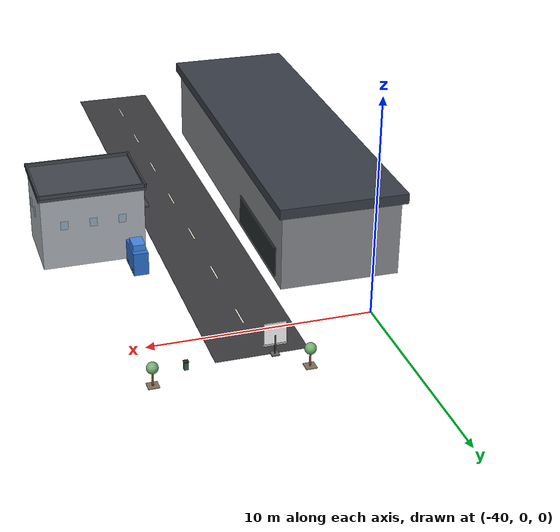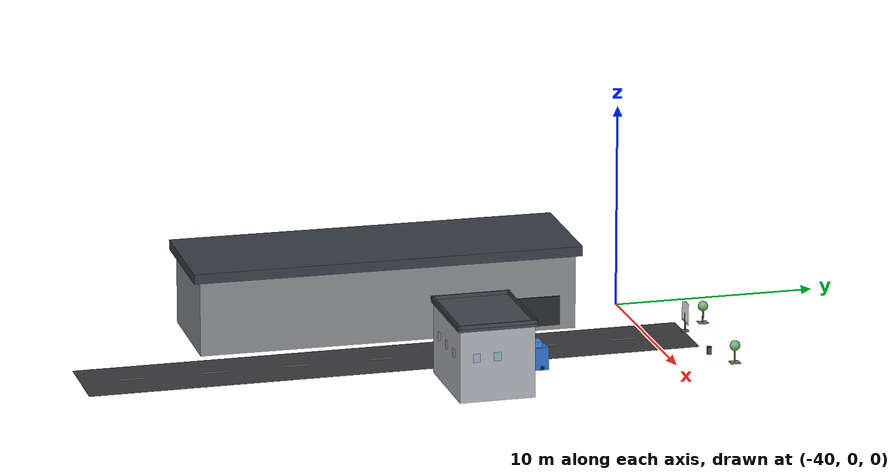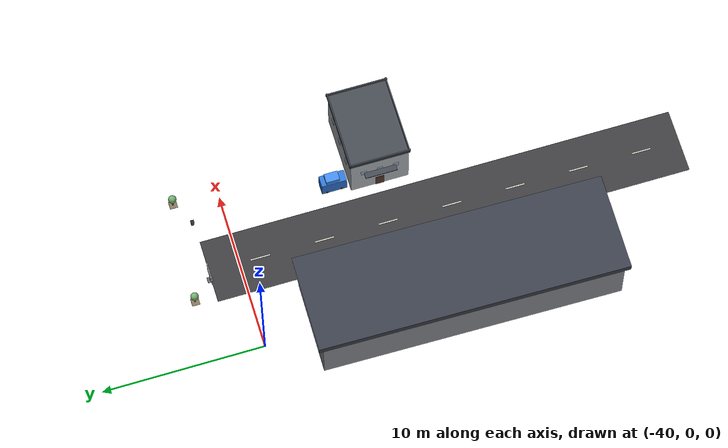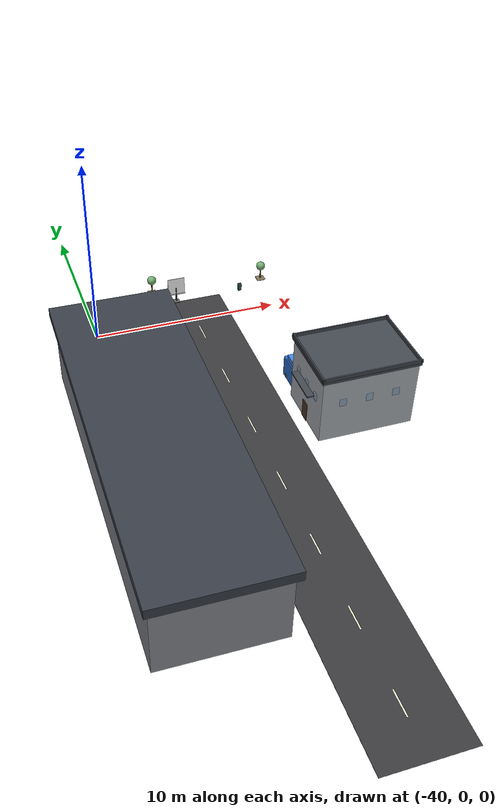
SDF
<sdf version="1.10">
 <world name="city">
  <model name="road_west_connector">
   <static>true</static>
   <pose>-34.4545196533203 -12.8991256713867 0 0 0 1.57080003571763</pose>
   <link name="link">
    <collision name="road_col">
     <pose>0 0 0.004 0 0 0</pose>
     <geometry><box><size>29.6 4 0.008</size></box></geometry>
    </collision>
    <visual name="road_vis">
     <pose>0 0 0.004 0 0 0</pose>
     <geometry><box><size>29.6 4 0.008</size></box></geometry>
     <material>
      <ambient>0.230000004 0.230000004 0.239999995 1</ambient>
      <diffuse>0.230000004 0.230000004 0.239999995 1</diffuse>
      <specular>0.0799999982 0.0799999982 0.0799999982 1</specular>
     </material>
    </visual>
    <visual name="dash0_vis">
     <pose>-12.4 0 0.0088 0 0 0</pose>
     <geometry><box><size>1.2 0.072 0.004</size></box></geometry>
     <material>
      <ambient>0.959999979 0.939999998 0.829999983 1</ambient>
      <diffuse>0.959999979 0.939999998 0.829999983 1</diffuse>
      <specular>0.0799999982 0.0799999982 0.0799999982 1</specular>
     </material>
    </visual>
    <visual name="dash1_vis">
     <pose>-8.4 0 0.0088 0 0 0</pose>
     <geometry><box><size>1.2 0.072 0.004</size></box></geometry>
     <material>
      <ambient>0.959999979 0.939999998 0.829999983 1</ambient>
      <diffuse>0.959999979 0.939999998 0.829999983 1</diffuse>
      <specular>0.0799999982 0.0799999982 0.0799999982 1</specular>
     </material>
    </visual>
    <visual name="dash2_vis">
     <pose>-4.4 0 0.0088 0 0 0</pose>
     <geometry><box><size>1.2 0.072 0.004</size></box></geometry>
     <material>
      <ambient>0.959999979 0.939999998 0.829999983 1</ambient>
      <diffuse>0.959999979 0.939999998 0.829999983 1</diffuse>
      <specular>0.0799999982 0.0799999982 0.0799999982 1</specular>
     </material>
    </visual>
    <visual name="dash3_vis">
     <pose>-0.4 0 0.0088 0 0 0</pose>
     <geometry><box><size>1.2 0.072 0.004</size></box></geometry>
     <material>
      <ambient>0.959999979 0.939999998 0.829999983 1</ambient>
      <diffuse>0.959999979 0.939999998 0.829999983 1</diffuse>
      <specular>0.0799999982 0.0799999982 0.0799999982 1</specular>
     </material>
    </visual>
    <visual name="dash4_vis">
     <pose>3.6 0 0.0088 0 0 0</pose>
     <geometry><box><size>1.2 0.072 0.004</size></box></geometry>
     <material>
      <ambient>0.959999979 0.939999998 0.829999983 1</ambient>
      <diffuse>0.959999979 0.939999998 0.829999983 1</diffuse>
      <specular>0.0799999982 0.0799999982 0.0799999982 1</specular>
     </material>
    </visual>
    <visual name="dash5_vis">
     <pose>7.6 0 0.0088 0 0 0</pose>
     <geometry><box><size>1.2 0.072 0.004</size></box></geometry>
     <material>
      <ambient>0.959999979 0.939999998 0.829999983 1</ambient>
      <diffuse>0.959999979 0.939999998 0.829999983 1</diffuse>
      <specular>0.0799999982 0.0799999982 0.0799999982 1</specular>
     </material>
    </visual>
    <visual name="dash6_vis">
     <pose>11.6 0 0.0088 0 0 0</pose>
     <geometry><box><size>1.2 0.072 0.004</size></box></geometry>
     <material>
      <ambient>0.959999979 0.939999998 0.829999983 1</ambient>
      <diffuse>0.959999979 0.939999998 0.829999983 1</diffuse>
      <specular>0.0799999982 0.0799999982 0.0799999982 1</specular>
     </material>
    </visual>
    <inertial>
     <mass>1</mass>
     <inertia><ixx>1</ixx><ixy>0</ixy><ixz>0</ixz><iyy>1</iyy><iyz>0</iyz><izz>1</izz></inertia>
    </inertial>
   </link>
  </model>
  <model name="tree_24">
   <static>true</static>
   <pose>-29.6474792480469 2.78198394775391 0 0 0 0</pose>
   <link name="link">
    <collision name="soil_col">
     <pose>0 0 0.012 0 0 0</pose>
     <geometry><box><size>0.48 0.48 0.024</size></box></geometry>
    </collision>
    <visual name="soil_vis">
     <pose>0 0 0.012 0 0 0</pose>
     <geometry><box><size>0.48 0.48 0.024</size></box></geometry>
     <material>
      <ambient>0.5 0.439999998 0.349999994 1</ambient>
      <diffuse>0.5 0.439999998 0.349999994 1</diffuse>
      <specular>0.0799999982 0.0799999982 0.0799999982 1</specular>
     </material>
    </visual>
    <collision name="trunk_col">
     <pose>0 0 0.36 0 0 0</pose>
     <geometry><cylinder><radius>0.04</radius><length>0.72</length></cylinder></geometry>
    </collision>
    <visual name="trunk_vis">
     <pose>0 0 0.36 0 0 0</pose>
     <geometry><cylinder><radius>0.04</radius><length>0.72</length></cylinder></geometry>
     <material>
      <ambient>0.449999988 0.310000002 0.180000007 1</ambient>
      <diffuse>0.449999988 0.310000002 0.180000007 1</diffuse>
      <specular>0.0799999982 0.0799999982 0.0799999982 1</specular>
     </material>
    </visual>
    <visual name="crown_vis">
     <pose>0 0 0.84 0 0 0</pose>
     <geometry><sphere><radius>0.248</radius></sphere></geometry>
     <material>
      <ambient>0.449999988 0.680000007 0.439999998 1</ambient>
      <diffuse>0.449999988 0.680000007 0.439999998 1</diffuse>
      <specular>0.0799999982 0.0799999982 0.0799999982 1</specular>
     </material>
    </visual>
    <inertial>
     <mass>1</mass>
     <inertia><ixx>1</ixx><ixy>0</ixy><ixz>0</ixz><iyy>1</iyy><iyz>0</iyz><izz>1</izz></inertia>
    </inertial>
   </link>
  </model>
  <model name="tree_25">
   <static>true</static>
   <pose>-36.0678924560547 3.2 0 0 0 0</pose>
   <link name="link">
    <collision name="soil_col">
     <pose>0 0 0.012 0 0 0</pose>
     <geometry><box><size>0.48 0.48 0.024</size></box></geometry>
    </collision>
    <visual name="soil_vis">
     <pose>0 0 0.012 0 0 0</pose>
     <geometry><box><size>0.48 0.48 0.024</size></box></geometry>
     <material>
      <ambient>0.5 0.439999998 0.349999994 1</ambient>
      <diffuse>0.5 0.439999998 0.349999994 1</diffuse>
      <specular>0.0799999982 0.0799999982 0.0799999982 1</specular>
     </material>
    </visual>
    <collision name="trunk_col">
     <pose>0 0 0.36 0 0 0</pose>
     <geometry><cylinder><radius>0.04</radius><length>0.72</length></cylinder></geometry>
    </collision>
    <visual name="trunk_vis">
     <pose>0 0 0.36 0 0 0</pose>
     <geometry><cylinder><radius>0.04</radius><length>0.72</length></cylinder></geometry>
     <material>
      <ambient>0.449999988 0.310000002 0.180000007 1</ambient>
      <diffuse>0.449999988 0.310000002 0.180000007 1</diffuse>
      <specular>0.0799999982 0.0799999982 0.0799999982 1</specular>
     </material>
    </visual>
    <visual name="crown_vis">
     <pose>0 0 0.84 0 0 0</pose>
     <geometry><sphere><radius>0.248</radius></sphere></geometry>
     <material>
      <ambient>0.449999988 0.680000007 0.439999998 1</ambient>
      <diffuse>0.449999988 0.680000007 0.439999998 1</diffuse>
      <specular>0.0799999982 0.0799999982 0.0799999982 1</specular>
     </material>
    </visual>
    <inertial>
     <mass>1</mass>
     <inertia><ixx>1</ixx><ixy>0</ixy><ixz>0</ixz><iyy>1</iyy><iyz>0</iyz><izz>1</izz></inertia>
    </inertial>
   </link>
  </model>
  <model name="bin_0">
   <static>true</static>
   <pose>-31.2 2 0 0 0 0</pose>
   <link name="link">
    <visual name="body">
     <pose>0 0 0.18 0 0 0</pose>
     <geometry><box><size>0.18 0.18 0.36</size></box></geometry>
     <material>
      <ambient>0.180000007 0.379999995 0.219999999 1</ambient>
      <diffuse>0.180000007 0.379999995 0.219999999 1</diffuse>
      <specular>0.0799999982 0.0799999982 0.0799999982 1</specular>
     </material>
    </visual>
    <visual name="lid">
     <pose>0 0 0.368 0 0 0</pose>
     <geometry><box><size>0.208 0.208 0.032</size></box></geometry>
     <material>
      <ambient>0.150000006 0.150000006 0.150000006 1</ambient>
      <diffuse>0.150000006 0.150000006 0.150000006 1</diffuse>
      <specular>0.0799999982 0.0799999982 0.0799999982 1</specular>
     </material>
    </visual>
    <inertial>
     <mass>1</mass>
     <inertia><ixx>1</ixx><ixy>0</ixy><ixz>0</ixz><iyy>1</iyy><iyz>0</iyz><izz>1</izz></inertia>
    </inertial>
   </link>
  </model>
  <model name="restaurant_qr_sign">
   <static>true</static>
   <pose>-34.9796813964844 1.96698799133301 0 0 0 -1.56862787106349</pose>
   <link name="link">
    <collision name="post_col">
     <pose>0 0 0.46 0 0 0</pose>
     <geometry><box><size>0.056 0.056 0.92</size></box></geometry>
    </collision>
    <visual name="post_vis">
     <pose>0 0 0.46 0 0 0</pose>
     <geometry><box><size>0.056 0.056 0.92</size></box></geometry>
     <material>
      <ambient>0.239999995 0.239999995 0.239999995 1</ambient>
      <diffuse>0.239999995 0.239999995 0.239999995 1</diffuse>
      <specular>0.0799999982 0.0799999982 0.0799999982 1</specular>
     </material>
    </visual>
    <collision name="base_col">
     <pose>0 0 0.024 0 0 0</pose>
     <geometry><box><size>0.34 0.34 0.048</size></box></geometry>
    </collision>
    <visual name="base_vis">
     <pose>0 0 0.024 0 0 0</pose>
     <geometry><box><size>0.34 0.34 0.048</size></box></geometry>
     <material>
      <ambient>0.379999995 0.379999995 0.379999995 1</ambient>
      <diffuse>0.379999995 0.379999995 0.379999995 1</diffuse>
      <specular>0.0799999982 0.0799999982 0.0799999982 1</specular>
     </material>
    </visual>
    <visual name="back_vis">
     <pose>0 0 0.48 0 0 0</pose>
     <geometry><box><size>0.024 1.02 0.06</size></box></geometry>
     <material>
      <ambient>0.920000017 0.920000017 0.920000017 1</ambient>
      <diffuse>0.920000017 0.920000017 0.920000017 1</diffuse>
      <specular>0.0500000007 0.0500000007 0.0500000007 1</specular>
     </material>
    </visual>
    <visual name="qr_vis">
     <pose>0 0 1.02 0 0 0</pose>
     <geometry><box><size>0.04 0.96 0.96</size></box></geometry>
     <material>
      <ambient>1 1 1 1</ambient>
      <diffuse>1 1 1 1</diffuse>
      <specular>0.0500000007 0.0500000007 0.0500000007 1</specular>
      <pbr><metal><metalness>0.0</metalness><roughness>1.0</roughness></metal></pbr>
     </material>
    </visual>
    <inertial>
     <mass>1</mass>
     <inertia><ixx>1</ixx><ixy>0</ixy><ixz>0</ixz><iyy>1</iyy><iyz>0</iyz><izz>1</izz></inertia>
    </inertial>
   </link>
  </model>
  <model name="gallery_long_warehouse_3">
   <static>true</static>
   <pose>-39.8097304594998 -12.1472482567963 0 0 0 -1.58411002434634</pose>
   <link name="body">
    <collision name="collision">
     <pose>0 0 1.8 0 0 0</pose>
     <geometry><box><size>18.4 5.6 3.6</size></box></geometry>
    </collision>
    <visual name="main">
     <pose>0 0 1.8 0 0 0</pose>
     <geometry><box><size>18.4 5.6 3.6</size></box></geometry>
     <material>
      <ambient>0.540000021 0.550000012 0.569999993 1</ambient>
      <diffuse>0.540000021 0.550000012 0.569999993 1</diffuse>
      <specular>0.0500000007 0.0500000007 0.0500000007 1</specular>
     </material>
    </visual>
    <visual name="roof">
     <pose>0 0 3.88 0 0 0</pose>
     <geometry><box><size>19 6 0.48</size></box></geometry>
     <material>
      <ambient>0.219999999 0.239999995 0.280000001 1</ambient>
      <diffuse>0.219999999 0.239999995 0.280000001 1</diffuse>
      <specular>0.0399999991 0.0399999991 0.0399999991 1</specular>
     </material>
    </visual>
    <visual name="loading_bays">
     <pose>-5.6 2.84 0.96 0 0 0</pose>
     <geometry><box><size>5.6 0.08 1.44</size></box></geometry>
     <material>
      <ambient>0.150000006 0.170000002 0.180000007 1</ambient>
      <diffuse>0.150000006 0.170000002 0.180000007 1</diffuse>
      <specular>0.0199999996 0.0199999996 0.0199999996 1</specular>
     </material>
    </visual>
    <inertial>
     <mass>1</mass>
     <inertia><ixx>1</ixx><ixy>0</ixy><ixz>0</ixz><iyy>1</iyy><iyz>0</iyz><izz>1</izz></inertia>
    </inertial>
   </link>
  </model>
  <model name="office_east_2_2_1_1">
   <static>true</static>
   <pose>-29.4421723225907 -9.55060925805542 0 0 0 0</pose>
   <link name="link">
    <collision name="body_col">
     <pose>0 0 1.72 0 0 0</pose>
     <geometry><box><size>4.8 3.6 3.44</size></box></geometry>
    </collision>
    <visual name="body_vis">
     <pose>0 0 1.72 0 0 0</pose>
     <geometry><box><size>4.8 3.6 3.44</size></box></geometry>
     <material>
      <ambient>0.689999998 0.709999979 0.730000019 1</ambient>
      <diffuse>0.689999998 0.709999979 0.730000019 1</diffuse>
      <specular>0.0799999982 0.0799999982 0.0799999982 1</specular>
     </material>
    </visual>
    <collision name="roof_col">
     <pose>0 0 3.51 0 0 0</pose>
     <geometry><box><size>4.96 3.76 0.14</size></box></geometry>
    </collision>
    <visual name="roof_vis">
     <pose>0 0 3.51 0 0 0</pose>
     <geometry><box><size>4.96 3.76 0.14</size></box></geometry>
     <material>
      <ambient>0.25999999 0.280000001 0.310000002 1</ambient>
      <diffuse>0.25999999 0.280000001 0.310000002 1</diffuse>
      <specular>0.0799999982 0.0799999982 0.0799999982 1</specular>
     </material>
    </visual>
    <visual name="p1_vis">
     <pose>0 1.836 3.668 0 0 0</pose>
     <geometry><box><size>5.02 0.072 0.18</size></box></geometry>
     <material>
      <ambient>0.25999999 0.280000001 0.310000002 1</ambient>
      <diffuse>0.25999999 0.280000001 0.310000002 1</diffuse>
      <specular>0.0799999982 0.0799999982 0.0799999982 1</specular>
     </material>
    </visual>
    <visual name="p2_vis">
     <pose>0 -1.836 3.668 0 0 0</pose>
     <geometry><box><size>5.02 0.072 0.18</size></box></geometry>
     <material>
      <ambient>0.25999999 0.280000001 0.310000002 1</ambient>
      <diffuse>0.25999999 0.280000001 0.310000002 1</diffuse>
      <specular>0.0799999982 0.0799999982 0.0799999982 1</specular>
     </material>
    </visual>
    <visual name="p3_vis">
     <pose>2.436 0 3.668 0 0 0</pose>
     <geometry><box><size>0.072 3.82 0.18</size></box></geometry>
     <material>
      <ambient>0.25999999 0.280000001 0.310000002 1</ambient>
      <diffuse>0.25999999 0.280000001 0.310000002 1</diffuse>
      <specular>0.0799999982 0.0799999982 0.0799999982 1</specular>
     </material>
    </visual>
    <visual name="p4_vis">
     <pose>-2.436 0 3.668 0 0 0</pose>
     <geometry><box><size>0.072 3.82 0.18</size></box></geometry>
     <material>
      <ambient>0.25999999 0.280000001 0.310000002 1</ambient>
      <diffuse>0.25999999 0.280000001 0.310000002 1</diffuse>
      <specular>0.0799999982 0.0799999982 0.0799999982 1</specular>
     </material>
    </visual>
    <visual name="door_vis">
     <pose>-2.416 0 0.48 0 0 0</pose>
     <geometry><box><size>0.04 0.52 0.96</size></box></geometry>
     <material>
      <ambient>0.319999993 0.219999999 0.159999996 1</ambient>
      <diffuse>0.319999993 0.219999999 0.159999996 1</diffuse>
      <specular>0.0799999982 0.0799999982 0.0799999982 1</specular>
     </material>
    </visual>
    <visual name="win_west_0">
     <pose>-2.412 -1.008 2.1328 0 0 0</pose>
     <geometry><box><size>0.032 0.34 0.4</size></box></geometry>
     <material>
      <ambient>0.550000012 0.720000029 0.879999995 0.550000012</ambient>
      <diffuse>0.550000012 0.720000029 0.879999995 0.550000012</diffuse>
      <specular>0.0799999982 0.0799999982 0.0799999982 1</specular>
      <transparency>0.35</transparency>
     </material>
    </visual>
    <visual name="win_west_1">
     <pose>-2.412 0 2.1328 0 0 0</pose>
     <geometry><box><size>0.032 0.34 0.4</size></box></geometry>
     <material>
      <ambient>0.550000012 0.720000029 0.879999995 0.550000012</ambient>
      <diffuse>0.550000012 0.720000029 0.879999995 0.550000012</diffuse>
      <specular>0.0799999982 0.0799999982 0.0799999982 1</specular>
      <transparency>0.35</transparency>
     </material>
    </visual>
    <visual name="win_west_2">
     <pose>-2.412 1.008 2.1328 0 0 0</pose>
     <geometry><box><size>0.032 0.34 0.4</size></box></geometry>
     <material>
      <ambient>0.550000012 0.720000029 0.879999995 0.550000012</ambient>
      <diffuse>0.550000012 0.720000029 0.879999995 0.550000012</diffuse>
      <specular>0.0799999982 0.0799999982 0.0799999982 1</specular>
      <transparency>0.35</transparency>
     </material>
    </visual>
    <visual name="win_south_0">
     <pose>-1.344 -1.812 2.1328 0 0 0</pose>
     <geometry><box><size>0.34 0.032 0.4</size></box></geometry>
     <material>
      <ambient>0.550000012 0.720000029 0.879999995 0.550000012</ambient>
      <diffuse>0.550000012 0.720000029 0.879999995 0.550000012</diffuse>
      <specular>0.0799999982 0.0799999982 0.0799999982 1</specular>
      <transparency>0.35</transparency>
     </material>
    </visual>
    <visual name="win_south_1">
     <pose>0 -1.812 2.1328 0 0 0</pose>
     <geometry><box><size>0.34 0.032 0.4</size></box></geometry>
     <material>
      <ambient>0.550000012 0.720000029 0.879999995 0.550000012</ambient>
      <diffuse>0.550000012 0.720000029 0.879999995 0.550000012</diffuse>
      <specular>0.0799999982 0.0799999982 0.0799999982 1</specular>
      <transparency>0.35</transparency>
     </material>
    </visual>
    <visual name="win_south_2">
     <pose>1.344 -1.812 2.1328 0 0 0</pose>
     <geometry><box><size>0.34 0.032 0.4</size></box></geometry>
     <material>
      <ambient>0.550000012 0.720000029 0.879999995 0.550000012</ambient>
      <diffuse>0.550000012 0.720000029 0.879999995 0.550000012</diffuse>
      <specular>0.0799999982 0.0799999982 0.0799999982 1</specular>
      <transparency>0.35</transparency>
     </material>
    </visual>
    <visual name="win_east_0">
     <pose>2.412 -1.008 2.1328 0 0 0</pose>
     <geometry><box><size>0.032 0.34 0.4</size></box></geometry>
     <material>
      <ambient>0.550000012 0.720000029 0.879999995 0.550000012</ambient>
      <diffuse>0.550000012 0.720000029 0.879999995 0.550000012</diffuse>
      <specular>0.0799999982 0.0799999982 0.0799999982 1</specular>
      <transparency>0.35</transparency>
     </material>
    </visual>
    <visual name="win_east_1">
     <pose>2.412 0 2.1328 0 0 0</pose>
     <geometry><box><size>0.032 0.34 0.4</size></box></geometry>
     <material>
      <ambient>0.550000012 0.720000029 0.879999995 0.550000012</ambient>
      <diffuse>0.550000012 0.720000029 0.879999995 0.550000012</diffuse>
      <specular>0.0799999982 0.0799999982 0.0799999982 1</specular>
      <transparency>0.35</transparency>
     </material>
    </visual>
    <visual name="win_north_0">
     <pose>-1.344 1.812 2.1328 0 0 0</pose>
     <geometry><box><size>0.34 0.032 0.4</size></box></geometry>
     <material>
      <ambient>0.550000012 0.720000029 0.879999995 0.550000012</ambient>
      <diffuse>0.550000012 0.720000029 0.879999995 0.550000012</diffuse>
      <specular>0.0799999982 0.0799999982 0.0799999982 1</specular>
      <transparency>0.35</transparency>
     </material>
    </visual>
    <visual name="win_north_1">
     <pose>0 1.812 2.1328 0 0 0</pose>
     <geometry><box><size>0.34 0.032 0.4</size></box></geometry>
     <material>
      <ambient>0.550000012 0.720000029 0.879999995 0.550000012</ambient>
      <diffuse>0.550000012 0.720000029 0.879999995 0.550000012</diffuse>
      <specular>0.0799999982 0.0799999982 0.0799999982 1</specular>
      <transparency>0.35</transparency>
     </material>
    </visual>
    <visual name="win_north_2">
     <pose>1.344 1.812 2.1328 0 0 0</pose>
     <geometry><box><size>0.34 0.032 0.4</size></box></geometry>
     <material>
      <ambient>0.550000012 0.720000029 0.879999995 0.550000012</ambient>
      <diffuse>0.550000012 0.720000029 0.879999995 0.550000012</diffuse>
      <specular>0.0799999982 0.0799999982 0.0799999982 1</specular>
      <transparency>0.35</transparency>
     </material>
    </visual>
    <visual name="awning">
     <pose>-2.62 0 2.1328 0 0 0</pose>
     <geometry><box><size>0.36 1.98 0.064</size></box></geometry>
     <material>
      <ambient>0.25999999 0.280000001 0.310000002 1</ambient>
      <diffuse>0.25999999 0.280000001 0.310000002 1</diffuse>
      <specular>0.0799999982 0.0799999982 0.0799999982 1</specular>
     </material>
    </visual>
    <inertial>
     <mass>1</mass>
     <inertia><ixx>1</ixx><ixy>0</ixy><ixz>0</ixz><iyy>1</iyy><iyz>0</iyz><izz>1</izz></inertia>
    </inertial>
   </link>
  </model>
  <model name="car_9_6_1">
   <static>true</static>
   <pose>-31.2270434828 -6.78632026995 0 0 0 1.57080003572</pose>
   <link name="link">
    <collision name="body_col">
     <pose>0 0 0.55125 0 0 0</pose>
     <geometry><box><size>1.56 0.7 1.1025</size></box></geometry>
    </collision>
    <collision name="cab_col">
     <pose>0.06 0 0.866 0 0 0</pose>
     <geometry><box><size>0.84 0.58 1.0395</size></box></geometry>
    </collision>
    <visual name="body_vis">
     <pose>0 0 0.55125 0 0 0</pose>
     <geometry><box><size>1.56 0.7 1.1025</size></box></geometry>
     <material>
      <ambient>0.180000007 0.449999988 0.819999993 1</ambient>
      <diffuse>0.180000007 0.449999988 0.819999993 1</diffuse>
      <specular>0.0799999982 0.0799999982 0.0799999982 1</specular>
     </material>
    </visual>
    <visual name="cab_vis">
     <pose>0.06 0 0.866 0 0 0</pose>
     <geometry><box><size>0.84 0.58 1.0395</size></box></geometry>
     <material>
      <ambient>0.25999999 0.529999971 0.899999976 1</ambient>
      <diffuse>0.25999999 0.529999971 0.899999976 1</diffuse>
      <specular>0.0799999982 0.0799999982 0.0799999982 1</specular>
     </material>
    </visual>
    <visual name="glass_vis">
     <pose>0.08 0 0.854 0 0 0</pose>
     <geometry><box><size>0.76 0.528 0.8505</size></box></geometry>
     <material>
      <ambient>0.550000012 0.720000029 0.879999995 0.550000012</ambient>
      <diffuse>0.550000012 0.720000029 0.879999995 0.550000012</diffuse>
      <specular>0.0799999982 0.0799999982 0.0799999982 1</specular>
      <transparency>0.35</transparency>
     </material>
    </visual>
    <visual name="wheel_-1.15_-0.82">
     <pose>-0.46 -0.328 0.11 1.5708 0 0</pose>
     <geometry><cylinder><radius>0.112</radius><length>0.072</length></cylinder></geometry>
     <material>
      <ambient>0.0799999982 0.0799999982 0.0799999982 1</ambient>
      <diffuse>0.0799999982 0.0799999982 0.0799999982 1</diffuse>
      <specular>0.0799999982 0.0799999982 0.0799999982 1</specular>
     </material>
    </visual>
    <visual name="wheel_-1.15_0.82">
     <pose>-0.46 0.328 0.11 1.5708 0 0</pose>
     <geometry><cylinder><radius>0.112</radius><length>0.072</length></cylinder></geometry>
     <material>
      <ambient>0.0799999982 0.0799999982 0.0799999982 1</ambient>
      <diffuse>0.0799999982 0.0799999982 0.0799999982 1</diffuse>
      <specular>0.0799999982 0.0799999982 0.0799999982 1</specular>
     </material>
    </visual>
    <visual name="wheel_1.15_-0.82">
     <pose>0.46 -0.328 0.11 1.5708 0 0</pose>
     <geometry><cylinder><radius>0.112</radius><length>0.072</length></cylinder></geometry>
     <material>
      <ambient>0.0799999982 0.0799999982 0.0799999982 1</ambient>
      <diffuse>0.0799999982 0.0799999982 0.0799999982 1</diffuse>
      <specular>0.0799999982 0.0799999982 0.0799999982 1</specular>
     </material>
    </visual>
    <visual name="wheel_1.15_0.82">
     <pose>0.46 0.328 0.11 1.5708 0 0</pose>
     <geometry><cylinder><radius>0.112</radius><length>0.072</length></cylinder></geometry>
     <material>
      <ambient>0.0799999982 0.0799999982 0.0799999982 1</ambient>
      <diffuse>0.0799999982 0.0799999982 0.0799999982 1</diffuse>
      <specular>0.0799999982 0.0799999982 0.0799999982 1</specular>
     </material>
    </visual>
    <inertial>
     <mass>1</mass>
     <inertia><ixx>1</ixx><ixy>0</ixy><ixz>0</ixz><iyy>1</iyy><iyz>0</iyz><izz>1</izz></inertia>
    </inertial>
   </link>
  </model>
 </world>
</sdf>
